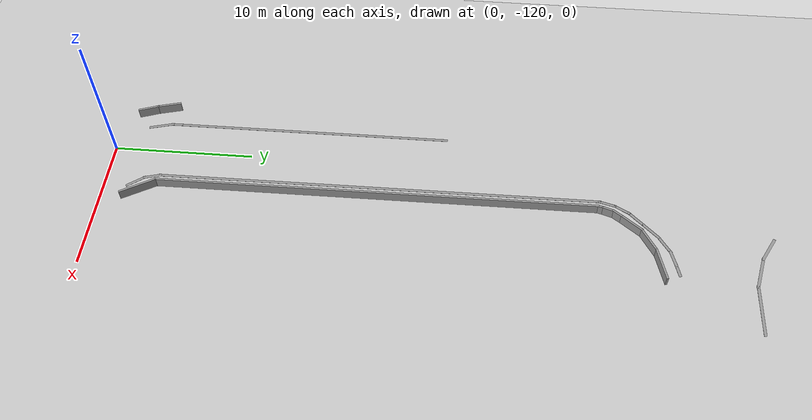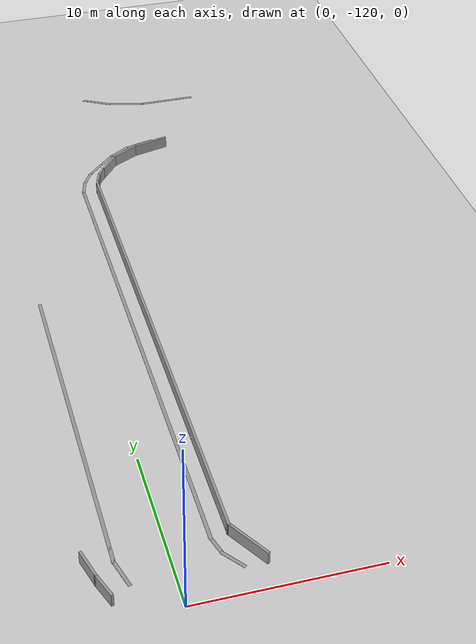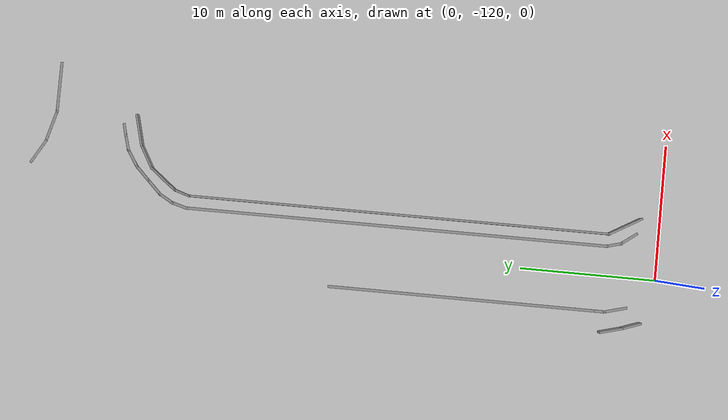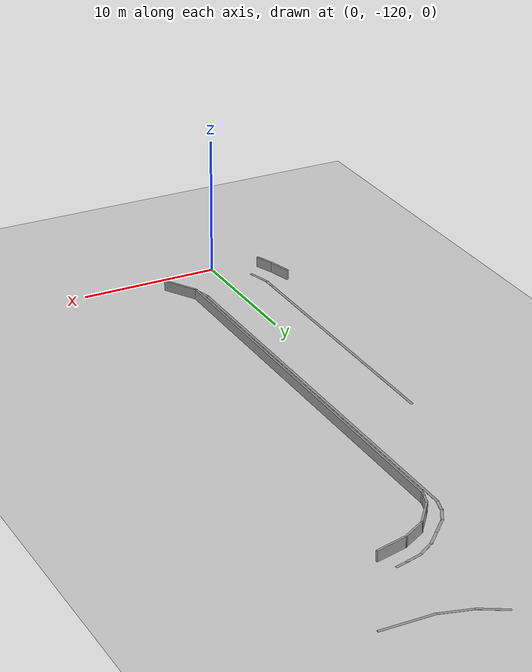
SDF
<sdf version="1.6">
 <world name="default">
  <model name="ground_plane">
   <static>1</static>
   <link name="link">
    <collision name="collision">
     <geometry><plane><normal>0 0 1</normal><size>100 100</size></plane></geometry>
     <surface>
      <contact><collide_bitmask>65535</collide_bitmask></contact>
      <friction><ode><mu>100</mu><mu2>50</mu2></ode></friction>
     </surface>
    </collision>
    <visual name="visual">
     <cast_shadows>0</cast_shadows>
     <geometry><plane><normal>0 0 1</normal><size>100 100</size></plane></geometry>
     <material>
      <script><uri>file://media/materials/scripts/gazebo.material</uri><name>Gazebo/Grey</name></script>
     </material>
    </visual>
   </link>
  </model>
  <model name="GercekDuvarSeritKoyu1">
   <link name="Wall_130">
    <pose>45.8641 -56.8886 0 0 -0 0</pose>
    <inertial>
     <mass>1</mass>
     <inertia><ixx>1</ixx><ixy>0</ixy><ixz>0</ixz><iyy>1</iyy><iyz>0</iyz><izz>1</izz></inertia>
    </inertial>
    <visual name="Wall_130_Visual">
     <pose>0 0 0.375 0 -0 0</pose>
     <geometry><box><size>31.25 0.15 0.75</size></box></geometry>
     <material>
      <script><uri>file://media/materials/scripts/gazebo.material</uri><name>Gazebo/Grey</name></script>
      <ambient>0.5 0.5 0.5 1</ambient>
      <shader type="pixel"><normal_map>__default__</normal_map></shader>
      <diffuse>0.7 0.7 0.7 1</diffuse>
      <specular>0.01 0.01 0.01 1</specular>
      <emissive>0 0 0 1</emissive>
     </material>
     <meta><layer>0</layer></meta>
    </visual>
    <collision name="Wall_130_Collision">
     <pose>0 0 0.375 0 -0 0</pose>
     <geometry><box><size>31.25 0.15 0.75</size></box></geometry>
     <surface>
      <friction>
       <ode><mu>1</mu><mu2>1</mu2><fdir1>0 0 0</fdir1><slip1>0</slip1><slip2>0</slip2></ode>
       <torsional>
        <coefficient>1</coefficient>
        <patch_radius>0</patch_radius>
        <surface_radius>0</surface_radius>
        <use_patch_radius>1</use_patch_radius>
        <ode><slip>0</slip></ode>
       </torsional>
      </friction>
      <bounce><restitution_coefficient>0</restitution_coefficient><threshold>1e+06</threshold></bounce>
      <contact>
       <collide_without_contact>0</collide_without_contact>
       <collide_without_contact_bitmask>1</collide_without_contact_bitmask>
       <collide_bitmask>1</collide_bitmask>
       <ode>
        <soft_cfm>0</soft_cfm>
        <soft_erp>0.2</soft_erp>
        <kp>1e+13</kp>
        <kd>1</kd>
        <max_vel>0.01</max_vel>
        <min_depth>0</min_depth>
       </ode>
       <bullet>
        <split_impulse>1</split_impulse>
        <split_impulse_penetration_threshold>-0.01</split_impulse_penetration_threshold>
        <soft_cfm>0</soft_cfm>
        <soft_erp>0.2</soft_erp>
        <kp>1e+13</kp>
        <kd>1</kd>
       </bullet>
      </contact>
     </surface>
    </collision>
   </link>
   <link name="Wall_131">
    <pose>62.5396 -56.2386 0 0 -0 0.523727</pose>
    <inertial>
     <mass>1</mass>
     <inertia><ixx>1</ixx><ixy>0</ixy><ixz>0</ixz><iyy>1</iyy><iyz>0</iyz><izz>1</izz></inertia>
    </inertial>
    <visual name="Wall_131_Visual">
     <pose>0 0 0.375 0 -0 0</pose>
     <geometry><box><size>2.75 0.15 0.75</size></box></geometry>
     <material>
      <script><uri>file://media/materials/scripts/gazebo.material</uri><name>Gazebo/Grey</name></script>
      <ambient>0.5 0.5 0.5 1</ambient>
      <shader type="pixel"><normal_map>__default__</normal_map></shader>
      <diffuse>0.7 0.7 0.7 1</diffuse>
      <specular>0.01 0.01 0.01 1</specular>
      <emissive>0 0 0 1</emissive>
     </material>
     <meta><layer>0</layer></meta>
    </visual>
    <collision name="Wall_131_Collision">
     <pose>0 0 0.375 0 -0 0</pose>
     <geometry><box><size>2.75 0.15 0.75</size></box></geometry>
     <surface>
      <friction>
       <ode><mu>1</mu><mu2>1</mu2><fdir1>0 0 0</fdir1><slip1>0</slip1><slip2>0</slip2></ode>
       <torsional>
        <coefficient>1</coefficient>
        <patch_radius>0</patch_radius>
        <surface_radius>0</surface_radius>
        <use_patch_radius>1</use_patch_radius>
        <ode><slip>0</slip></ode>
       </torsional>
      </friction>
      <bounce><restitution_coefficient>0</restitution_coefficient><threshold>1e+06</threshold></bounce>
      <contact>
       <collide_without_contact>0</collide_without_contact>
       <collide_without_contact_bitmask>1</collide_without_contact_bitmask>
       <collide_bitmask>1</collide_bitmask>
       <ode>
        <soft_cfm>0</soft_cfm>
        <soft_erp>0.2</soft_erp>
        <kp>1e+13</kp>
        <kd>1</kd>
        <max_vel>0.01</max_vel>
        <min_depth>0</min_depth>
       </ode>
       <bullet>
        <split_impulse>1</split_impulse>
        <split_impulse_penetration_threshold>-0.01</split_impulse_penetration_threshold>
        <soft_cfm>0</soft_cfm>
        <soft_erp>0.2</soft_erp>
        <kp>1e+13</kp>
        <kd>1</kd>
       </bullet>
      </contact>
     </surface>
    </collision>
   </link>
   <link name="Wall_157">
    <pose>28.0661 -55.6331 0 0 -0 2.46823</pose>
    <inertial>
     <mass>1</mass>
     <inertia><ixx>1</ixx><ixy>0</ixy><ixz>0</ixz><iyy>1</iyy><iyz>0</iyz><izz>1</izz></inertia>
    </inertial>
    <visual name="Wall_157_Visual">
     <pose>0 0 0.375 0 -0 0</pose>
     <geometry><box><size>1.85177 0.15 0.75</size></box></geometry>
     <material>
      <script><uri>file://media/materials/scripts/gazebo.material</uri><name>Gazebo/Grey</name></script>
      <ambient>0.5 0.5 0.5 1</ambient>
      <shader type="pixel"><normal_map>__default__</normal_map></shader>
      <diffuse>0.7 0.7 0.7 1</diffuse>
      <specular>0.01 0.01 0.01 1</specular>
      <emissive>0 0 0 1</emissive>
     </material>
     <meta><layer>0</layer></meta>
    </visual>
    <collision name="Wall_157_Collision">
     <pose>0 0 0.375 0 -0 0</pose>
     <geometry><box><size>1.85177 0.15 0.75</size></box></geometry>
     <surface>
      <friction>
       <ode><mu>1</mu><mu2>1</mu2><fdir1>0 0 0</fdir1><slip1>0</slip1><slip2>0</slip2></ode>
       <torsional>
        <coefficient>1</coefficient>
        <patch_radius>0</patch_radius>
        <surface_radius>0</surface_radius>
        <use_patch_radius>1</use_patch_radius>
        <ode><slip>0</slip></ode>
       </torsional>
      </friction>
      <bounce><restitution_coefficient>0</restitution_coefficient><threshold>1e+06</threshold></bounce>
      <contact>
       <collide_without_contact>0</collide_without_contact>
       <collide_without_contact_bitmask>1</collide_without_contact_bitmask>
       <collide_bitmask>1</collide_bitmask>
       <ode>
        <soft_cfm>0</soft_cfm>
        <soft_erp>0.2</soft_erp>
        <kp>1e+13</kp>
        <kd>1</kd>
        <max_vel>0.01</max_vel>
        <min_depth>0</min_depth>
       </ode>
       <bullet>
        <split_impulse>1</split_impulse>
        <split_impulse_penetration_threshold>-0.01</split_impulse_penetration_threshold>
        <soft_cfm>0</soft_cfm>
        <soft_erp>0.2</soft_erp>
        <kp>1e+13</kp>
        <kd>1</kd>
       </bullet>
      </contact>
     </surface>
    </collision>
   </link>
   <link name="Wall_158">
    <pose>26.9461 -54.3016 0 0 -0 2.08738</pose>
    <inertial>
     <mass>1</mass>
     <inertia><ixx>1</ixx><ixy>0</ixy><ixz>0</ixz><iyy>1</iyy><iyz>0</iyz><izz>1</izz></inertia>
    </inertial>
    <visual name="Wall_158_Visual">
     <pose>0 0 0.375 0 -0 0</pose>
     <geometry><box><size>1.99276 0.15 0.75</size></box></geometry>
     <material>
      <script><uri>file://media/materials/scripts/gazebo.material</uri><name>Gazebo/Grey</name></script>
      <ambient>0.5 0.5 0.5 1</ambient>
      <shader type="pixel"><normal_map>__default__</normal_map></shader>
      <diffuse>0.7 0.7 0.7 1</diffuse>
      <specular>0.01 0.01 0.01 1</specular>
      <emissive>0 0 0 1</emissive>
     </material>
     <meta><layer>0</layer></meta>
    </visual>
    <collision name="Wall_158_Collision">
     <pose>0 0 0.375 0 -0 0</pose>
     <geometry><box><size>1.99276 0.15 0.75</size></box></geometry>
     <surface>
      <friction>
       <ode><mu>1</mu><mu2>1</mu2><fdir1>0 0 0</fdir1><slip1>0</slip1><slip2>0</slip2></ode>
       <torsional>
        <coefficient>1</coefficient>
        <patch_radius>0</patch_radius>
        <surface_radius>0</surface_radius>
        <use_patch_radius>1</use_patch_radius>
        <ode><slip>0</slip></ode>
       </torsional>
      </friction>
      <bounce><restitution_coefficient>0</restitution_coefficient><threshold>1e+06</threshold></bounce>
      <contact>
       <collide_without_contact>0</collide_without_contact>
       <collide_without_contact_bitmask>1</collide_without_contact_bitmask>
       <collide_bitmask>1</collide_bitmask>
       <ode>
        <soft_cfm>0</soft_cfm>
        <soft_erp>0.2</soft_erp>
        <kp>1e+13</kp>
        <kd>1</kd>
        <max_vel>0.01</max_vel>
        <min_depth>0</min_depth>
       </ode>
       <bullet>
        <split_impulse>1</split_impulse>
        <split_impulse_penetration_threshold>-0.01</split_impulse_penetration_threshold>
        <soft_cfm>0</soft_cfm>
        <soft_erp>0.2</soft_erp>
        <kp>1e+13</kp>
        <kd>1</kd>
       </bullet>
      </contact>
     </surface>
    </collision>
   </link>
   <link name="Wall_159">
    <pose>26.2121 -52.4056 0 0 -0 1.82028</pose>
    <inertial>
     <mass>1</mass>
     <inertia><ixx>1</ixx><ixy>0</ixy><ixz>0</ixz><iyy>1</iyy><iyz>0</iyz><izz>1</izz></inertia>
    </inertial>
    <visual name="Wall_159_Visual">
     <pose>0 0 0.375 0 -0 0</pose>
     <geometry><box><size>2.40962 0.15 0.75</size></box></geometry>
     <material>
      <script><uri>file://media/materials/scripts/gazebo.material</uri><name>Gazebo/Grey</name></script>
      <ambient>0.5 0.5 0.5 1</ambient>
      <shader type="pixel"><normal_map>__default__</normal_map></shader>
      <diffuse>0.7 0.7 0.7 1</diffuse>
      <specular>0.01 0.01 0.01 1</specular>
      <emissive>0 0 0 1</emissive>
     </material>
     <meta><layer>0</layer></meta>
    </visual>
    <collision name="Wall_159_Collision">
     <pose>0 0 0.375 0 -0 0</pose>
     <geometry><box><size>2.40962 0.15 0.75</size></box></geometry>
     <surface>
      <friction>
       <ode><mu>1</mu><mu2>1</mu2><fdir1>0 0 0</fdir1><slip1>0</slip1><slip2>0</slip2></ode>
       <torsional>
        <coefficient>1</coefficient>
        <patch_radius>0</patch_radius>
        <surface_radius>0</surface_radius>
        <use_patch_radius>1</use_patch_radius>
        <ode><slip>0</slip></ode>
       </torsional>
      </friction>
      <bounce><restitution_coefficient>0</restitution_coefficient><threshold>1e+06</threshold></bounce>
      <contact>
       <collide_without_contact>0</collide_without_contact>
       <collide_without_contact_bitmask>1</collide_without_contact_bitmask>
       <collide_bitmask>1</collide_bitmask>
       <ode>
        <soft_cfm>0</soft_cfm>
        <soft_erp>0.2</soft_erp>
        <kp>1e+13</kp>
        <kd>1</kd>
        <max_vel>0.01</max_vel>
        <min_depth>0</min_depth>
       </ode>
       <bullet>
        <split_impulse>1</split_impulse>
        <split_impulse_penetration_threshold>-0.01</split_impulse_penetration_threshold>
        <soft_cfm>0</soft_cfm>
        <soft_erp>0.2</soft_erp>
        <kp>1e+13</kp>
        <kd>1</kd>
       </bullet>
      </contact>
     </surface>
    </collision>
   </link>
   <link name="Wall_239">
    <pose>51.0141 -62.6381 0 0 0 -0.001172</pose>
    <visual name="Wall_239_Visual">
     <pose>0 0 0.005 0 -0 0</pose>
     <geometry><box><size>19.82 0.2 0.01</size></box></geometry>
     <material>
      <script><uri>file://media/materials/scripts/gazebo.material</uri><name>Gazebo/Grey</name></script>
      <ambient>1 1 1 1</ambient>
      <shader type="pixel"/>
     </material>
     <meta><layer>0</layer></meta>
    </visual>
    <collision name="Wall_239_Collision">
     <pose>0 0 0.005 0 -0 0</pose>
     <geometry><box><size>19.82 0.2 0.01</size></box></geometry>
     <surface>
      <friction>
       <ode><mu>1</mu><mu2>1</mu2><fdir1>0 0 0</fdir1><slip1>0</slip1><slip2>0</slip2></ode>
       <torsional>
        <coefficient>1</coefficient>
        <patch_radius>0</patch_radius>
        <surface_radius>0</surface_radius>
        <use_patch_radius>1</use_patch_radius>
        <ode><slip>0</slip></ode>
       </torsional>
      </friction>
      <bounce><restitution_coefficient>0</restitution_coefficient><threshold>1e+06</threshold></bounce>
      <contact>
       <collide_without_contact>0</collide_without_contact>
       <collide_without_contact_bitmask>1</collide_without_contact_bitmask>
       <collide_bitmask>1</collide_bitmask>
       <ode>
        <soft_cfm>0</soft_cfm>
        <soft_erp>0.2</soft_erp>
        <kp>1e+13</kp>
        <kd>1</kd>
        <max_vel>0.01</max_vel>
        <min_depth>0</min_depth>
       </ode>
       <bullet>
        <split_impulse>1</split_impulse>
        <split_impulse_penetration_threshold>-0.01</split_impulse_penetration_threshold>
        <soft_cfm>0</soft_cfm>
        <soft_erp>0.2</soft_erp>
        <kp>1e+13</kp>
        <kd>1</kd>
       </bullet>
      </contact>
     </surface>
    </collision>
   </link>
   <link name="Wall_244">
    <pose>61.2491 -62.6496 0 0 -0 0</pose>
    <visual name="Wall_244_Visual">
     <pose>0 0 0.005 0 -0 0</pose>
     <geometry><box><size>1.05 0.2 0.01</size></box></geometry>
     <material>
      <script><uri>file://media/materials/scripts/gazebo.material</uri><name>Gazebo/Grey</name></script>
      <ambient>1 1 1 1</ambient>
      <shader type="pixel"/>
     </material>
     <meta><layer>0</layer></meta>
    </visual>
    <collision name="Wall_244_Collision">
     <pose>0 0 0.005 0 -0 0</pose>
     <geometry><box><size>1.05 0.2 0.01</size></box></geometry>
     <surface>
      <friction>
       <ode><mu>1</mu><mu2>1</mu2><fdir1>0 0 0</fdir1><slip1>0</slip1><slip2>0</slip2></ode>
       <torsional>
        <coefficient>1</coefficient>
        <patch_radius>0</patch_radius>
        <surface_radius>0</surface_radius>
        <use_patch_radius>1</use_patch_radius>
        <ode><slip>0</slip></ode>
       </torsional>
      </friction>
      <bounce><restitution_coefficient>0</restitution_coefficient><threshold>1e+06</threshold></bounce>
      <contact>
       <collide_without_contact>0</collide_without_contact>
       <collide_without_contact_bitmask>1</collide_without_contact_bitmask>
       <collide_bitmask>1</collide_bitmask>
       <ode>
        <soft_cfm>0</soft_cfm>
        <soft_erp>0.2</soft_erp>
        <kp>1e+13</kp>
        <kd>1</kd>
        <max_vel>0.01</max_vel>
        <min_depth>0</min_depth>
       </ode>
       <bullet>
        <split_impulse>1</split_impulse>
        <split_impulse_penetration_threshold>-0.01</split_impulse_penetration_threshold>
        <soft_cfm>0</soft_cfm>
        <soft_erp>0.2</soft_erp>
        <kp>1e+13</kp>
        <kd>1</kd>
       </bullet>
      </contact>
     </surface>
    </collision>
   </link>
   <link name="Wall_245">
    <pose>62.4471 -62.4426 0 0 -0 0.261649</pose>
    <visual name="Wall_245_Visual">
     <pose>0 0 0.005 0 -0 0</pose>
     <geometry><box><size>1.80047 0.2 0.01</size></box></geometry>
     <material>
      <script><uri>file://media/materials/scripts/gazebo.material</uri><name>Gazebo/Grey</name></script>
      <ambient>1 1 1 1</ambient>
      <shader type="pixel"/>
     </material>
     <meta><layer>0</layer></meta>
    </visual>
    <collision name="Wall_245_Collision">
     <pose>0 0 0.005 0 -0 0</pose>
     <geometry><box><size>1.80047 0.2 0.01</size></box></geometry>
     <surface>
      <friction>
       <ode><mu>1</mu><mu2>1</mu2><fdir1>0 0 0</fdir1><slip1>0</slip1><slip2>0</slip2></ode>
       <torsional>
        <coefficient>1</coefficient>
        <patch_radius>0</patch_radius>
        <surface_radius>0</surface_radius>
        <use_patch_radius>1</use_patch_radius>
        <ode><slip>0</slip></ode>
       </torsional>
      </friction>
      <bounce><restitution_coefficient>0</restitution_coefficient><threshold>1e+06</threshold></bounce>
      <contact>
       <collide_without_contact>0</collide_without_contact>
       <collide_without_contact_bitmask>1</collide_without_contact_bitmask>
       <collide_bitmask>1</collide_bitmask>
       <ode>
        <soft_cfm>0</soft_cfm>
        <soft_erp>0.2</soft_erp>
        <kp>1e+13</kp>
        <kd>1</kd>
        <max_vel>0.01</max_vel>
        <min_depth>0</min_depth>
       </ode>
       <bullet>
        <split_impulse>1</split_impulse>
        <split_impulse_penetration_threshold>-0.01</split_impulse_penetration_threshold>
        <soft_cfm>0</soft_cfm>
        <soft_erp>0.2</soft_erp>
        <kp>1e+13</kp>
        <kd>1</kd>
       </bullet>
      </contact>
     </surface>
    </collision>
   </link>
   <link name="Wall_386">
    <pose>18.7696 -54.5836 0 0 -0 1.04716</pose>
    <visual name="Wall_386_Visual">
     <pose>0 0 0.005 0 -0 0</pose>
     <geometry><box><size>2.04998 0.2 0.01</size></box></geometry>
     <material>
      <script><uri>file://media/materials/scripts/gazebo.material</uri><name>Gazebo/Grey</name></script>
      <ambient>1 1 1 1</ambient>
      <shader type="pixel"/>
     </material>
     <meta><layer>0</layer></meta>
    </visual>
    <collision name="Wall_386_Collision">
     <pose>0 0 0.005 0 -0 0</pose>
     <geometry><box><size>2.04998 0.2 0.01</size></box></geometry>
     <surface>
      <friction>
       <ode><mu>1</mu><mu2>1</mu2><fdir1>0 0 0</fdir1><slip1>0</slip1><slip2>0</slip2></ode>
       <torsional>
        <coefficient>1</coefficient>
        <patch_radius>0</patch_radius>
        <surface_radius>0</surface_radius>
        <use_patch_radius>1</use_patch_radius>
        <ode><slip>0</slip></ode>
       </torsional>
      </friction>
      <bounce><restitution_coefficient>0</restitution_coefficient><threshold>1e+06</threshold></bounce>
      <contact>
       <collide_without_contact>0</collide_without_contact>
       <collide_without_contact_bitmask>1</collide_without_contact_bitmask>
       <collide_bitmask>1</collide_bitmask>
       <ode>
        <soft_cfm>0</soft_cfm>
        <soft_erp>0.2</soft_erp>
        <kp>1e+13</kp>
        <kd>1</kd>
        <max_vel>0.01</max_vel>
        <min_depth>0</min_depth>
       </ode>
       <bullet>
        <split_impulse>1</split_impulse>
        <split_impulse_penetration_threshold>-0.01</split_impulse_penetration_threshold>
        <soft_cfm>0</soft_cfm>
        <soft_erp>0.2</soft_erp>
        <kp>1e+13</kp>
        <kd>1</kd>
       </bullet>
      </contact>
     </surface>
    </collision>
   </link>
   <link name="Wall_387">
    <pose>19.5361 -52.6476 0 0 -0 1.3091</pose>
    <visual name="Wall_387_Visual">
     <pose>0 0 0.005 0 -0 0</pose>
     <geometry><box><size>2.55019 0.2 0.01</size></box></geometry>
     <material>
      <script><uri>file://media/materials/scripts/gazebo.material</uri><name>Gazebo/Grey</name></script>
      <ambient>1 1 1 1</ambient>
      <shader type="pixel"/>
     </material>
     <meta><layer>0</layer></meta>
    </visual>
    <collision name="Wall_387_Collision">
     <pose>0 0 0.005 0 -0 0</pose>
     <geometry><box><size>2.55019 0.2 0.01</size></box></geometry>
     <surface>
      <friction>
       <ode><mu>1</mu><mu2>1</mu2><fdir1>0 0 0</fdir1><slip1>0</slip1><slip2>0</slip2></ode>
       <torsional>
        <coefficient>1</coefficient>
        <patch_radius>0</patch_radius>
        <surface_radius>0</surface_radius>
        <use_patch_radius>1</use_patch_radius>
        <ode><slip>0</slip></ode>
       </torsional>
      </friction>
      <bounce><restitution_coefficient>0</restitution_coefficient><threshold>1e+06</threshold></bounce>
      <contact>
       <collide_without_contact>0</collide_without_contact>
       <collide_without_contact_bitmask>1</collide_without_contact_bitmask>
       <collide_bitmask>1</collide_bitmask>
       <ode>
        <soft_cfm>0</soft_cfm>
        <soft_erp>0.2</soft_erp>
        <kp>1e+13</kp>
        <kd>1</kd>
        <max_vel>0.01</max_vel>
        <min_depth>0</min_depth>
       </ode>
       <bullet>
        <split_impulse>1</split_impulse>
        <split_impulse_penetration_threshold>-0.01</split_impulse_penetration_threshold>
        <soft_cfm>0</soft_cfm>
        <soft_erp>0.2</soft_erp>
        <kp>1e+13</kp>
        <kd>1</kd>
       </bullet>
      </contact>
     </surface>
    </collision>
   </link>
   <link name="Wall_388">
    <pose>19.8401 -49.7126 0 0 -0 1.5708</pose>
    <visual name="Wall_388_Visual">
     <pose>0 0 0.005 0 -0 0</pose>
     <geometry><box><size>3.80019 0.2 0.01</size></box></geometry>
     <material>
      <script><uri>file://media/materials/scripts/gazebo.material</uri><name>Gazebo/Grey</name></script>
      <ambient>1 1 1 1</ambient>
      <shader type="pixel"/>
     </material>
     <meta><layer>0</layer></meta>
    </visual>
    <collision name="Wall_388_Collision">
     <pose>0 0 0.005 0 -0 0</pose>
     <geometry><box><size>3.80019 0.2 0.01</size></box></geometry>
     <surface>
      <friction>
       <ode><mu>1</mu><mu2>1</mu2><fdir1>0 0 0</fdir1><slip1>0</slip1><slip2>0</slip2></ode>
       <torsional>
        <coefficient>1</coefficient>
        <patch_radius>0</patch_radius>
        <surface_radius>0</surface_radius>
        <use_patch_radius>1</use_patch_radius>
        <ode><slip>0</slip></ode>
       </torsional>
      </friction>
      <bounce><restitution_coefficient>0</restitution_coefficient><threshold>1e+06</threshold></bounce>
      <contact>
       <collide_without_contact>0</collide_without_contact>
       <collide_without_contact_bitmask>1</collide_without_contact_bitmask>
       <collide_bitmask>1</collide_bitmask>
       <ode>
        <soft_cfm>0</soft_cfm>
        <soft_erp>0.2</soft_erp>
        <kp>1e+13</kp>
        <kd>1</kd>
        <max_vel>0.01</max_vel>
        <min_depth>0</min_depth>
       </ode>
       <bullet>
        <split_impulse>1</split_impulse>
        <split_impulse_penetration_threshold>-0.01</split_impulse_penetration_threshold>
        <soft_cfm>0</soft_cfm>
        <soft_erp>0.2</soft_erp>
        <kp>1e+13</kp>
        <kd>1</kd>
       </bullet>
      </contact>
     </surface>
    </collision>
   </link>
   <link name="Wall_4">
    <pose>62.1061 -63.9266 0 0 -0 0.261649</pose>
    <inertial>
     <mass>1</mass>
     <inertia><ixx>1</ixx><ixy>0</ixy><ixz>0</ixz><iyy>1</iyy><iyz>0</iyz><izz>1</izz></inertia>
    </inertial>
    <visual name="Wall_4_Visual">
     <pose>0 0 0.375 0 -0 0</pose>
     <geometry><box><size>1.75 0.15 0.75</size></box></geometry>
     <material>
      <script><uri>file://media/materials/scripts/gazebo.material</uri><name>Gazebo/Grey</name></script>
      <ambient>0.5 0.5 0.5 1</ambient>
      <shader type="pixel"><normal_map>__default__</normal_map></shader>
      <diffuse>0.7 0.7 0.7 1</diffuse>
      <specular>0.01 0.01 0.01 1</specular>
      <emissive>0 0 0 1</emissive>
     </material>
     <meta><layer>0</layer></meta>
    </visual>
    <collision name="Wall_4_Collision">
     <pose>0 0 0.375 0 -0 0</pose>
     <geometry><box><size>1.75 0.15 0.75</size></box></geometry>
     <surface>
      <friction>
       <ode><mu>1</mu><mu2>1</mu2><fdir1>0 0 0</fdir1><slip1>0</slip1><slip2>0</slip2></ode>
       <torsional>
        <coefficient>1</coefficient>
        <patch_radius>0</patch_radius>
        <surface_radius>0</surface_radius>
        <use_patch_radius>1</use_patch_radius>
        <ode><slip>0</slip></ode>
       </torsional>
      </friction>
      <bounce><restitution_coefficient>0</restitution_coefficient><threshold>1e+06</threshold></bounce>
      <contact>
       <collide_without_contact>0</collide_without_contact>
       <collide_without_contact_bitmask>1</collide_without_contact_bitmask>
       <collide_bitmask>1</collide_bitmask>
       <ode>
        <soft_cfm>0</soft_cfm>
        <soft_erp>0.2</soft_erp>
        <kp>1e+13</kp>
        <kd>1</kd>
        <max_vel>0.01</max_vel>
        <min_depth>0</min_depth>
       </ode>
       <bullet>
        <split_impulse>1</split_impulse>
        <split_impulse_penetration_threshold>-0.01</split_impulse_penetration_threshold>
        <soft_cfm>0</soft_cfm>
        <soft_erp>0.2</soft_erp>
        <kp>1e+13</kp>
        <kd>1</kd>
       </bullet>
      </contact>
     </surface>
    </collision>
   </link>
   <link name="Wall_423">
    <pose>45.7651 -57.7966 0 0 -0 0</pose>
    <visual name="Wall_423_Visual">
     <pose>0 0 0.005 0 -0 0</pose>
     <geometry><box><size>31.5496 0.2 0.01</size></box></geometry>
     <material>
      <script><uri>file://media/materials/scripts/gazebo.material</uri><name>Gazebo/Grey</name></script>
      <ambient>1 1 1 1</ambient>
      <shader type="pixel"/>
     </material>
     <meta><layer>0</layer></meta>
    </visual>
    <collision name="Wall_423_Collision">
     <pose>0 0 0.005 0 -0 0</pose>
     <geometry><box><size>31.5496 0.2 0.01</size></box></geometry>
     <surface>
      <friction>
       <ode><mu>1</mu><mu2>1</mu2><fdir1>0 0 0</fdir1><slip1>0</slip1><slip2>0</slip2></ode>
       <torsional>
        <coefficient>1</coefficient>
        <patch_radius>0</patch_radius>
        <surface_radius>0</surface_radius>
        <use_patch_radius>1</use_patch_radius>
        <ode><slip>0</slip></ode>
       </torsional>
      </friction>
      <bounce><restitution_coefficient>0</restitution_coefficient><threshold>1e+06</threshold></bounce>
      <contact>
       <collide_without_contact>0</collide_without_contact>
       <collide_without_contact_bitmask>1</collide_without_contact_bitmask>
       <collide_bitmask>1</collide_bitmask>
       <ode>
        <soft_cfm>0</soft_cfm>
        <soft_erp>0.2</soft_erp>
        <kp>1e+13</kp>
        <kd>1</kd>
        <max_vel>0.01</max_vel>
        <min_depth>0</min_depth>
       </ode>
       <bullet>
        <split_impulse>1</split_impulse>
        <split_impulse_penetration_threshold>-0.01</split_impulse_penetration_threshold>
        <soft_cfm>0</soft_cfm>
        <soft_erp>0.2</soft_erp>
        <kp>1e+13</kp>
        <kd>1</kd>
       </bullet>
      </contact>
     </surface>
    </collision>
   </link>
   <link name="Wall_425">
    <pose>61.9711 -57.6541 0 0 -0 0.262184</pose>
    <visual name="Wall_425_Visual">
     <pose>0 0 0.005 0 -0 0</pose>
     <geometry><box><size>1.2997 0.2 0.01</size></box></geometry>
     <material>
      <script><uri>file://media/materials/scripts/gazebo.material</uri><name>Gazebo/Grey</name></script>
      <ambient>1 1 1 1</ambient>
      <shader type="pixel"/>
     </material>
     <meta><layer>0</layer></meta>
    </visual>
    <collision name="Wall_425_Collision">
     <pose>0 0 0.005 0 -0 0</pose>
     <geometry><box><size>1.2997 0.2 0.01</size></box></geometry>
     <surface>
      <friction>
       <ode><mu>1</mu><mu2>1</mu2><fdir1>0 0 0</fdir1><slip1>0</slip1><slip2>0</slip2></ode>
       <torsional>
        <coefficient>1</coefficient>
        <patch_radius>0</patch_radius>
        <surface_radius>0</surface_radius>
        <use_patch_radius>1</use_patch_radius>
        <ode><slip>0</slip></ode>
       </torsional>
      </friction>
      <bounce><restitution_coefficient>0</restitution_coefficient><threshold>1e+06</threshold></bounce>
      <contact>
       <collide_without_contact>0</collide_without_contact>
       <collide_without_contact_bitmask>1</collide_without_contact_bitmask>
       <collide_bitmask>1</collide_bitmask>
       <ode>
        <soft_cfm>0</soft_cfm>
        <soft_erp>0.2</soft_erp>
        <kp>1e+13</kp>
        <kd>1</kd>
        <max_vel>0.01</max_vel>
        <min_depth>0</min_depth>
       </ode>
       <bullet>
        <split_impulse>1</split_impulse>
        <split_impulse_penetration_threshold>-0.01</split_impulse_penetration_threshold>
        <soft_cfm>0</soft_cfm>
        <soft_erp>0.2</soft_erp>
        <kp>1e+13</kp>
        <kd>1</kd>
       </bullet>
      </contact>
     </surface>
    </collision>
   </link>
   <link name="Wall_426">
    <pose>63.0366 -57.1141 0 0 -0 0.639448</pose>
    <visual name="Wall_426_Visual">
     <pose>0 0 0.005 0 -0 0</pose>
     <geometry><box><size>1.53245 0.2 0.01</size></box></geometry>
     <material>
      <script><uri>file://media/materials/scripts/gazebo.material</uri><name>Gazebo/Grey</name></script>
      <ambient>1 1 1 1</ambient>
      <shader type="pixel"/>
     </material>
     <meta><layer>0</layer></meta>
    </visual>
    <collision name="Wall_426_Collision">
     <pose>0 0 0.005 0 -0 0</pose>
     <geometry><box><size>1.53245 0.2 0.01</size></box></geometry>
     <surface>
      <friction>
       <ode><mu>1</mu><mu2>1</mu2><fdir1>0 0 0</fdir1><slip1>0</slip1><slip2>0</slip2></ode>
       <torsional>
        <coefficient>1</coefficient>
        <patch_radius>0</patch_radius>
        <surface_radius>0</surface_radius>
        <use_patch_radius>1</use_patch_radius>
        <ode><slip>0</slip></ode>
       </torsional>
      </friction>
      <bounce><restitution_coefficient>0</restitution_coefficient><threshold>1e+06</threshold></bounce>
      <contact>
       <collide_without_contact>0</collide_without_contact>
       <collide_without_contact_bitmask>1</collide_without_contact_bitmask>
       <collide_bitmask>1</collide_bitmask>
       <ode>
        <soft_cfm>0</soft_cfm>
        <soft_erp>0.2</soft_erp>
        <kp>1e+13</kp>
        <kd>1</kd>
        <max_vel>0.01</max_vel>
        <min_depth>0</min_depth>
       </ode>
       <bullet>
        <split_impulse>1</split_impulse>
        <split_impulse_penetration_threshold>-0.01</split_impulse_penetration_threshold>
        <soft_cfm>0</soft_cfm>
        <soft_erp>0.2</soft_erp>
        <kp>1e+13</kp>
        <kd>1</kd>
       </bullet>
      </contact>
     </surface>
    </collision>
   </link>
   <link name="Wall_468">
    <pose>29.5586 -57.6476 0 0 -0 2.86827</pose>
    <visual name="Wall_468_Visual">
     <pose>0 0 0.005 0 -0 0</pose>
     <geometry><box><size>1.30398 0.2 0.01</size></box></geometry>
     <material>
      <script><uri>file://media/materials/scripts/gazebo.material</uri><name>Gazebo/Grey</name></script>
      <ambient>1 1 1 1</ambient>
      <shader type="pixel"/>
     </material>
     <meta><layer>0</layer></meta>
    </visual>
    <collision name="Wall_468_Collision">
     <pose>0 0 0.005 0 -0 0</pose>
     <geometry><box><size>1.30398 0.2 0.01</size></box></geometry>
     <surface>
      <friction>
       <ode><mu>1</mu><mu2>1</mu2><fdir1>0 0 0</fdir1><slip1>0</slip1><slip2>0</slip2></ode>
       <torsional>
        <coefficient>1</coefficient>
        <patch_radius>0</patch_radius>
        <surface_radius>0</surface_radius>
        <use_patch_radius>1</use_patch_radius>
        <ode><slip>0</slip></ode>
       </torsional>
      </friction>
      <bounce><restitution_coefficient>0</restitution_coefficient><threshold>1e+06</threshold></bounce>
      <contact>
       <collide_without_contact>0</collide_without_contact>
       <collide_without_contact_bitmask>1</collide_without_contact_bitmask>
       <collide_bitmask>1</collide_bitmask>
       <ode>
        <soft_cfm>0</soft_cfm>
        <soft_erp>0.2</soft_erp>
        <kp>1e+13</kp>
        <kd>1</kd>
        <max_vel>0.01</max_vel>
        <min_depth>0</min_depth>
       </ode>
       <bullet>
        <split_impulse>1</split_impulse>
        <split_impulse_penetration_threshold>-0.01</split_impulse_penetration_threshold>
        <soft_cfm>0</soft_cfm>
        <soft_erp>0.2</soft_erp>
        <kp>1e+13</kp>
        <kd>1</kd>
       </bullet>
      </contact>
     </surface>
    </collision>
   </link>
   <link name="Wall_469">
    <pose>28.5506 -57.2236 0 0 -0 2.61816</pose>
    <visual name="Wall_469_Visual">
     <pose>0 0 0.005 0 -0 0</pose>
     <geometry><box><size>1.30049 0.2 0.01</size></box></geometry>
     <material>
      <script><uri>file://media/materials/scripts/gazebo.material</uri><name>Gazebo/Grey</name></script>
      <ambient>1 1 1 1</ambient>
      <shader type="pixel"/>
     </material>
     <meta><layer>0</layer></meta>
    </visual>
    <collision name="Wall_469_Collision">
     <pose>0 0 0.005 0 -0 0</pose>
     <geometry><box><size>1.30049 0.2 0.01</size></box></geometry>
     <surface>
      <friction>
       <ode><mu>1</mu><mu2>1</mu2><fdir1>0 0 0</fdir1><slip1>0</slip1><slip2>0</slip2></ode>
       <torsional>
        <coefficient>1</coefficient>
        <patch_radius>0</patch_radius>
        <surface_radius>0</surface_radius>
        <use_patch_radius>1</use_patch_radius>
        <ode><slip>0</slip></ode>
       </torsional>
      </friction>
      <bounce><restitution_coefficient>0</restitution_coefficient><threshold>1e+06</threshold></bounce>
      <contact>
       <collide_without_contact>0</collide_without_contact>
       <collide_without_contact_bitmask>1</collide_without_contact_bitmask>
       <collide_bitmask>1</collide_bitmask>
       <ode>
        <soft_cfm>0</soft_cfm>
        <soft_erp>0.2</soft_erp>
        <kp>1e+13</kp>
        <kd>1</kd>
        <max_vel>0.01</max_vel>
        <min_depth>0</min_depth>
       </ode>
       <bullet>
        <split_impulse>1</split_impulse>
        <split_impulse_penetration_threshold>-0.01</split_impulse_penetration_threshold>
        <soft_cfm>0</soft_cfm>
        <soft_erp>0.2</soft_erp>
        <kp>1e+13</kp>
        <kd>1</kd>
       </bullet>
      </contact>
     </surface>
    </collision>
   </link>
   <link name="Wall_470">
    <pose>27.5971 -56.4776 0 0 -0 2.36252</pose>
    <visual name="Wall_470_Visual">
     <pose>0 0 0.005 0 -0 0</pose>
     <geometry><box><size>1.5407 0.2 0.01</size></box></geometry>
     <material>
      <script><uri>file://media/materials/scripts/gazebo.material</uri><name>Gazebo/Grey</name></script>
      <ambient>1 1 1 1</ambient>
      <shader type="pixel"/>
     </material>
     <meta><layer>0</layer></meta>
    </visual>
    <collision name="Wall_470_Collision">
     <pose>0 0 0.005 0 -0 0</pose>
     <geometry><box><size>1.5407 0.2 0.01</size></box></geometry>
     <surface>
      <friction>
       <ode><mu>1</mu><mu2>1</mu2><fdir1>0 0 0</fdir1><slip1>0</slip1><slip2>0</slip2></ode>
       <torsional>
        <coefficient>1</coefficient>
        <patch_radius>0</patch_radius>
        <surface_radius>0</surface_radius>
        <use_patch_radius>1</use_patch_radius>
        <ode><slip>0</slip></ode>
       </torsional>
      </friction>
      <bounce><restitution_coefficient>0</restitution_coefficient><threshold>1e+06</threshold></bounce>
      <contact>
       <collide_without_contact>0</collide_without_contact>
       <collide_without_contact_bitmask>1</collide_without_contact_bitmask>
       <collide_bitmask>1</collide_bitmask>
       <ode>
        <soft_cfm>0</soft_cfm>
        <soft_erp>0.2</soft_erp>
        <kp>1e+13</kp>
        <kd>1</kd>
        <max_vel>0.01</max_vel>
        <min_depth>0</min_depth>
       </ode>
       <bullet>
        <split_impulse>1</split_impulse>
        <split_impulse_penetration_threshold>-0.01</split_impulse_penetration_threshold>
        <soft_cfm>0</soft_cfm>
        <soft_erp>0.2</soft_erp>
        <kp>1e+13</kp>
        <kd>1</kd>
       </bullet>
      </contact>
     </surface>
    </collision>
   </link>
   <link name="Wall_471">
    <pose>26.6426 -55.5296 0 0 -0 2.35672</pose>
    <visual name="Wall_471_Visual">
     <pose>0 0 0.005 0 -0 0</pose>
     <geometry><box><size>1.54987 0.2 0.01</size></box></geometry>
     <material>
      <script><uri>file://media/materials/scripts/gazebo.material</uri><name>Gazebo/Grey</name></script>
      <ambient>1 1 1 1</ambient>
      <shader type="pixel"/>
     </material>
     <meta><layer>0</layer></meta>
    </visual>
    <collision name="Wall_471_Collision">
     <pose>0 0 0.005 0 -0 0</pose>
     <geometry><box><size>1.54987 0.2 0.01</size></box></geometry>
     <surface>
      <friction>
       <ode><mu>1</mu><mu2>1</mu2><fdir1>0 0 0</fdir1><slip1>0</slip1><slip2>0</slip2></ode>
       <torsional>
        <coefficient>1</coefficient>
        <patch_radius>0</patch_radius>
        <surface_radius>0</surface_radius>
        <use_patch_radius>1</use_patch_radius>
        <ode><slip>0</slip></ode>
       </torsional>
      </friction>
      <bounce><restitution_coefficient>0</restitution_coefficient><threshold>1e+06</threshold></bounce>
      <contact>
       <collide_without_contact>0</collide_without_contact>
       <collide_without_contact_bitmask>1</collide_without_contact_bitmask>
       <collide_bitmask>1</collide_bitmask>
       <ode>
        <soft_cfm>0</soft_cfm>
        <soft_erp>0.2</soft_erp>
        <kp>1e+13</kp>
        <kd>1</kd>
        <max_vel>0.01</max_vel>
        <min_depth>0</min_depth>
       </ode>
       <bullet>
        <split_impulse>1</split_impulse>
        <split_impulse_penetration_threshold>-0.01</split_impulse_penetration_threshold>
        <soft_cfm>0</soft_cfm>
        <soft_erp>0.2</soft_erp>
        <kp>1e+13</kp>
        <kd>1</kd>
       </bullet>
      </contact>
     </surface>
    </collision>
   </link>
   <link name="Wall_472">
    <pose>25.7931 -54.4681 0 0 -0 2.13758</pose>
    <visual name="Wall_472_Visual">
     <pose>0 0 0.005 0 -0 0</pose>
     <geometry><box><size>1.58568 0.2 0.01</size></box></geometry>
     <material>
      <script><uri>file://media/materials/scripts/gazebo.material</uri><name>Gazebo/Grey</name></script>
      <ambient>1 1 1 1</ambient>
      <shader type="pixel"/>
     </material>
     <meta><layer>0</layer></meta>
    </visual>
    <collision name="Wall_472_Collision">
     <pose>0 0 0.005 0 -0 0</pose>
     <geometry><box><size>1.58568 0.2 0.01</size></box></geometry>
     <surface>
      <friction>
       <ode><mu>1</mu><mu2>1</mu2><fdir1>0 0 0</fdir1><slip1>0</slip1><slip2>0</slip2></ode>
       <torsional>
        <coefficient>1</coefficient>
        <patch_radius>0</patch_radius>
        <surface_radius>0</surface_radius>
        <use_patch_radius>1</use_patch_radius>
        <ode><slip>0</slip></ode>
       </torsional>
      </friction>
      <bounce><restitution_coefficient>0</restitution_coefficient><threshold>1e+06</threshold></bounce>
      <contact>
       <collide_without_contact>0</collide_without_contact>
       <collide_without_contact_bitmask>1</collide_without_contact_bitmask>
       <collide_bitmask>1</collide_bitmask>
       <ode>
        <soft_cfm>0</soft_cfm>
        <soft_erp>0.2</soft_erp>
        <kp>1e+13</kp>
        <kd>1</kd>
        <max_vel>0.01</max_vel>
        <min_depth>0</min_depth>
       </ode>
       <bullet>
        <split_impulse>1</split_impulse>
        <split_impulse_penetration_threshold>-0.01</split_impulse_penetration_threshold>
        <soft_cfm>0</soft_cfm>
        <soft_erp>0.2</soft_erp>
        <kp>1e+13</kp>
        <kd>1</kd>
       </bullet>
      </contact>
     </surface>
    </collision>
   </link>
   <link name="Wall_473">
    <pose>25.2676 -53.3521 0 0 -0 1.85195</pose>
    <visual name="Wall_473_Visual">
     <pose>0 0 0.005 0 -0 0</pose>
     <geometry><box><size>1.30644 0.2 0.01</size></box></geometry>
     <material>
      <script><uri>file://media/materials/scripts/gazebo.material</uri><name>Gazebo/Grey</name></script>
      <ambient>1 1 1 1</ambient>
      <shader type="pixel"/>
     </material>
     <meta><layer>0</layer></meta>
    </visual>
    <collision name="Wall_473_Collision">
     <pose>0 0 0.005 0 -0 0</pose>
     <geometry><box><size>1.30644 0.2 0.01</size></box></geometry>
     <surface>
      <friction>
       <ode><mu>1</mu><mu2>1</mu2><fdir1>0 0 0</fdir1><slip1>0</slip1><slip2>0</slip2></ode>
       <torsional>
        <coefficient>1</coefficient>
        <patch_radius>0</patch_radius>
        <surface_radius>0</surface_radius>
        <use_patch_radius>1</use_patch_radius>
        <ode><slip>0</slip></ode>
       </torsional>
      </friction>
      <bounce><restitution_coefficient>0</restitution_coefficient><threshold>1e+06</threshold></bounce>
      <contact>
       <collide_without_contact>0</collide_without_contact>
       <collide_without_contact_bitmask>1</collide_without_contact_bitmask>
       <collide_bitmask>1</collide_bitmask>
       <ode>
        <soft_cfm>0</soft_cfm>
        <soft_erp>0.2</soft_erp>
        <kp>1e+13</kp>
        <kd>1</kd>
        <max_vel>0.01</max_vel>
        <min_depth>0</min_depth>
       </ode>
       <bullet>
        <split_impulse>1</split_impulse>
        <split_impulse_penetration_threshold>-0.01</split_impulse_penetration_threshold>
        <soft_cfm>0</soft_cfm>
        <soft_erp>0.2</soft_erp>
        <kp>1e+13</kp>
        <kd>1</kd>
       </bullet>
      </contact>
     </surface>
    </collision>
   </link>
   <link name="Wall_474">
    <pose>25.0161 -52.4266 0 0 -0 1.81458</pose>
    <visual name="Wall_474_Visual">
     <pose>0 0 0.005 0 -0 0</pose>
     <geometry><box><size>1.01201 0.2 0.01</size></box></geometry>
     <material>
      <script><uri>file://media/materials/scripts/gazebo.material</uri><name>Gazebo/Grey</name></script>
      <ambient>1 1 1 1</ambient>
      <shader type="pixel"/>
     </material>
     <meta><layer>0</layer></meta>
    </visual>
    <collision name="Wall_474_Collision">
     <pose>0 0 0.005 0 -0 0</pose>
     <geometry><box><size>1.01201 0.2 0.01</size></box></geometry>
     <surface>
      <friction>
       <ode><mu>1</mu><mu2>1</mu2><fdir1>0 0 0</fdir1><slip1>0</slip1><slip2>0</slip2></ode>
       <torsional>
        <coefficient>1</coefficient>
        <patch_radius>0</patch_radius>
        <surface_radius>0</surface_radius>
        <use_patch_radius>1</use_patch_radius>
        <ode><slip>0</slip></ode>
       </torsional>
      </friction>
      <bounce><restitution_coefficient>0</restitution_coefficient><threshold>1e+06</threshold></bounce>
      <contact>
       <collide_without_contact>0</collide_without_contact>
       <collide_without_contact_bitmask>1</collide_without_contact_bitmask>
       <collide_bitmask>1</collide_bitmask>
       <ode>
        <soft_cfm>0</soft_cfm>
        <soft_erp>0.2</soft_erp>
        <kp>1e+13</kp>
        <kd>1</kd>
        <max_vel>0.01</max_vel>
        <min_depth>0</min_depth>
       </ode>
       <bullet>
        <split_impulse>1</split_impulse>
        <split_impulse_penetration_threshold>-0.01</split_impulse_penetration_threshold>
        <soft_cfm>0</soft_cfm>
        <soft_erp>0.2</soft_erp>
        <kp>1e+13</kp>
        <kd>1</kd>
       </bullet>
      </contact>
     </surface>
    </collision>
   </link>
   <link name="Wall_476">
    <pose>30.1446 -56.8431 0 0 -0 2.87934</pose>
    <inertial>
     <mass>1</mass>
     <inertia><ixx>1</ixx><ixy>0</ixy><ixz>0</ixz><iyy>1</iyy><iyz>0</iyz><izz>1</izz></inertia>
    </inertial>
    <visual name="Wall_476_Visual">
     <pose>0 0 0.375 0 -0 0</pose>
     <geometry><box><size>0.501001 0.15 0.75</size></box></geometry>
     <material>
      <script><uri>file://media/materials/scripts/gazebo.material</uri><name>Gazebo/Grey</name></script>
      <ambient>0.5 0.5 0.5 1</ambient>
      <shader type="pixel"><normal_map>__default__</normal_map></shader>
      <diffuse>0.7 0.7 0.7 1</diffuse>
      <specular>0.01 0.01 0.01 1</specular>
      <emissive>0 0 0 1</emissive>
     </material>
     <meta><layer>0</layer></meta>
    </visual>
    <collision name="Wall_476_Collision">
     <pose>0 0 0.375 0 -0 0</pose>
     <geometry><box><size>0.501001 0.15 0.75</size></box></geometry>
     <surface>
      <friction>
       <ode><mu>1</mu><mu2>1</mu2><fdir1>0 0 0</fdir1><slip1>0</slip1><slip2>0</slip2></ode>
       <torsional>
        <coefficient>1</coefficient>
        <patch_radius>0</patch_radius>
        <surface_radius>0</surface_radius>
        <use_patch_radius>1</use_patch_radius>
        <ode><slip>0</slip></ode>
       </torsional>
      </friction>
      <bounce><restitution_coefficient>0</restitution_coefficient><threshold>1e+06</threshold></bounce>
      <contact>
       <collide_without_contact>0</collide_without_contact>
       <collide_without_contact_bitmask>1</collide_without_contact_bitmask>
       <collide_bitmask>1</collide_bitmask>
       <ode>
        <soft_cfm>0</soft_cfm>
        <soft_erp>0.2</soft_erp>
        <kp>1e+13</kp>
        <kd>1</kd>
        <max_vel>0.01</max_vel>
        <min_depth>0</min_depth>
       </ode>
       <bullet>
        <split_impulse>1</split_impulse>
        <split_impulse_penetration_threshold>-0.01</split_impulse_penetration_threshold>
        <soft_cfm>0</soft_cfm>
        <soft_erp>0.2</soft_erp>
        <kp>1e+13</kp>
        <kd>1</kd>
       </bullet>
      </contact>
     </surface>
    </collision>
   </link>
   <link name="Wall_477">
    <pose>29.6171 -56.6781 0 0 -0 2.81942</pose>
    <inertial>
     <mass>1</mass>
     <inertia><ixx>1</ixx><ixy>0</ixy><ixz>0</ixz><iyy>1</iyy><iyz>0</iyz><izz>1</izz></inertia>
    </inertial>
    <visual name="Wall_477_Visual">
     <pose>0 0 0.375 0 -0 0</pose>
     <geometry><box><size>0.905294 0.15 0.75</size></box></geometry>
     <material>
      <script><uri>file://media/materials/scripts/gazebo.material</uri><name>Gazebo/Grey</name></script>
      <ambient>0.5 0.5 0.5 1</ambient>
      <shader type="pixel"><normal_map>__default__</normal_map></shader>
      <diffuse>0.7 0.7 0.7 1</diffuse>
      <specular>0.01 0.01 0.01 1</specular>
      <emissive>0 0 0 1</emissive>
     </material>
     <meta><layer>0</layer></meta>
    </visual>
    <collision name="Wall_477_Collision">
     <pose>0 0 0.375 0 -0 0</pose>
     <geometry><box><size>0.905294 0.15 0.75</size></box></geometry>
     <surface>
      <friction>
       <ode><mu>1</mu><mu2>1</mu2><fdir1>0 0 0</fdir1><slip1>0</slip1><slip2>0</slip2></ode>
       <torsional>
        <coefficient>1</coefficient>
        <patch_radius>0</patch_radius>
        <surface_radius>0</surface_radius>
        <use_patch_radius>1</use_patch_radius>
        <ode><slip>0</slip></ode>
       </torsional>
      </friction>
      <bounce><restitution_coefficient>0</restitution_coefficient><threshold>1e+06</threshold></bounce>
      <contact>
       <collide_without_contact>0</collide_without_contact>
       <collide_without_contact_bitmask>1</collide_without_contact_bitmask>
       <collide_bitmask>1</collide_bitmask>
       <ode>
        <soft_cfm>0</soft_cfm>
        <soft_erp>0.2</soft_erp>
        <kp>1e+13</kp>
        <kd>1</kd>
        <max_vel>0.01</max_vel>
        <min_depth>0</min_depth>
       </ode>
       <bullet>
        <split_impulse>1</split_impulse>
        <split_impulse_penetration_threshold>-0.01</split_impulse_penetration_threshold>
        <soft_cfm>0</soft_cfm>
        <soft_erp>0.2</soft_erp>
        <kp>1e+13</kp>
        <kd>1</kd>
       </bullet>
      </contact>
     </surface>
    </collision>
   </link>
   <link name="Wall_478">
    <pose>28.9951 -56.3611 0 0 -0 2.49931</pose>
    <inertial>
     <mass>1</mass>
     <inertia><ixx>1</ixx><ixy>0</ixy><ixz>0</ixz><iyy>1</iyy><iyz>0</iyz><izz>1</izz></inertia>
    </inertial>
    <visual name="Wall_478_Visual">
     <pose>0 0 0.375 0 -0 0</pose>
     <geometry><box><size>0.809346 0.15 0.75</size></box></geometry>
     <material>
      <script><uri>file://media/materials/scripts/gazebo.material</uri><name>Gazebo/Grey</name></script>
      <ambient>0.5 0.5 0.5 1</ambient>
      <shader type="pixel"><normal_map>__default__</normal_map></shader>
      <diffuse>0.7 0.7 0.7 1</diffuse>
      <specular>0.01 0.01 0.01 1</specular>
      <emissive>0 0 0 1</emissive>
     </material>
     <meta><layer>0</layer></meta>
    </visual>
    <collision name="Wall_478_Collision">
     <pose>0 0 0.375 0 -0 0</pose>
     <geometry><box><size>0.809346 0.15 0.75</size></box></geometry>
     <surface>
      <friction>
       <ode><mu>1</mu><mu2>1</mu2><fdir1>0 0 0</fdir1><slip1>0</slip1><slip2>0</slip2></ode>
       <torsional>
        <coefficient>1</coefficient>
        <patch_radius>0</patch_radius>
        <surface_radius>0</surface_radius>
        <use_patch_radius>1</use_patch_radius>
        <ode><slip>0</slip></ode>
       </torsional>
      </friction>
      <bounce><restitution_coefficient>0</restitution_coefficient><threshold>1e+06</threshold></bounce>
      <contact>
       <collide_without_contact>0</collide_without_contact>
       <collide_without_contact_bitmask>1</collide_without_contact_bitmask>
       <collide_bitmask>1</collide_bitmask>
       <ode>
        <soft_cfm>0</soft_cfm>
        <soft_erp>0.2</soft_erp>
        <kp>1e+13</kp>
        <kd>1</kd>
        <max_vel>0.01</max_vel>
        <min_depth>0</min_depth>
       </ode>
       <bullet>
        <split_impulse>1</split_impulse>
        <split_impulse_penetration_threshold>-0.01</split_impulse_penetration_threshold>
        <soft_cfm>0</soft_cfm>
        <soft_erp>0.2</soft_erp>
        <kp>1e+13</kp>
        <kd>1</kd>
       </bullet>
      </contact>
     </surface>
    </collision>
   </link>
   <link name="Wall_5">
    <pose>63.5336 -63.4876 0 0 -0 0.340651</pose>
    <inertial>
     <mass>1</mass>
     <inertia><ixx>1</ixx><ixy>0</ixy><ixz>0</ixz><iyy>1</iyy><iyz>0</iyz><izz>1</izz></inertia>
    </inertial>
    <visual name="Wall_5_Visual">
     <pose>0 0 0.375 0 -0 0</pose>
     <geometry><box><size>1.53958 0.15 0.75</size></box></geometry>
     <material>
      <script><uri>file://media/materials/scripts/gazebo.material</uri><name>Gazebo/Grey</name></script>
      <ambient>0.5 0.5 0.5 1</ambient>
      <shader type="pixel"><normal_map>__default__</normal_map></shader>
      <diffuse>0.7 0.7 0.7 1</diffuse>
      <specular>0.01 0.01 0.01 1</specular>
      <emissive>0 0 0 1</emissive>
     </material>
     <meta><layer>0</layer></meta>
    </visual>
    <collision name="Wall_5_Collision">
     <pose>0 0 0.375 0 -0 0</pose>
     <geometry><box><size>1.53958 0.15 0.75</size></box></geometry>
     <surface>
      <friction>
       <ode><mu>1</mu><mu2>1</mu2><fdir1>0 0 0</fdir1><slip1>0</slip1><slip2>0</slip2></ode>
       <torsional>
        <coefficient>1</coefficient>
        <patch_radius>0</patch_radius>
        <surface_radius>0</surface_radius>
        <use_patch_radius>1</use_patch_radius>
        <ode><slip>0</slip></ode>
       </torsional>
      </friction>
      <bounce><restitution_coefficient>0</restitution_coefficient><threshold>1e+06</threshold></bounce>
      <contact>
       <collide_without_contact>0</collide_without_contact>
       <collide_without_contact_bitmask>1</collide_without_contact_bitmask>
       <collide_bitmask>1</collide_bitmask>
       <ode>
        <soft_cfm>0</soft_cfm>
        <soft_erp>0.2</soft_erp>
        <kp>1e+13</kp>
        <kd>1</kd>
        <max_vel>0.01</max_vel>
        <min_depth>0</min_depth>
       </ode>
       <bullet>
        <split_impulse>1</split_impulse>
        <split_impulse_penetration_threshold>-0.01</split_impulse_penetration_threshold>
        <soft_cfm>0</soft_cfm>
        <soft_erp>0.2</soft_erp>
        <kp>1e+13</kp>
        <kd>1</kd>
       </bullet>
      </contact>
     </surface>
    </collision>
   </link>
   <static>1</static>
   <pose>59.9324 -54.7034 -0 0 0 -1.5695</pose>
  </model>
 </world>
</sdf>
